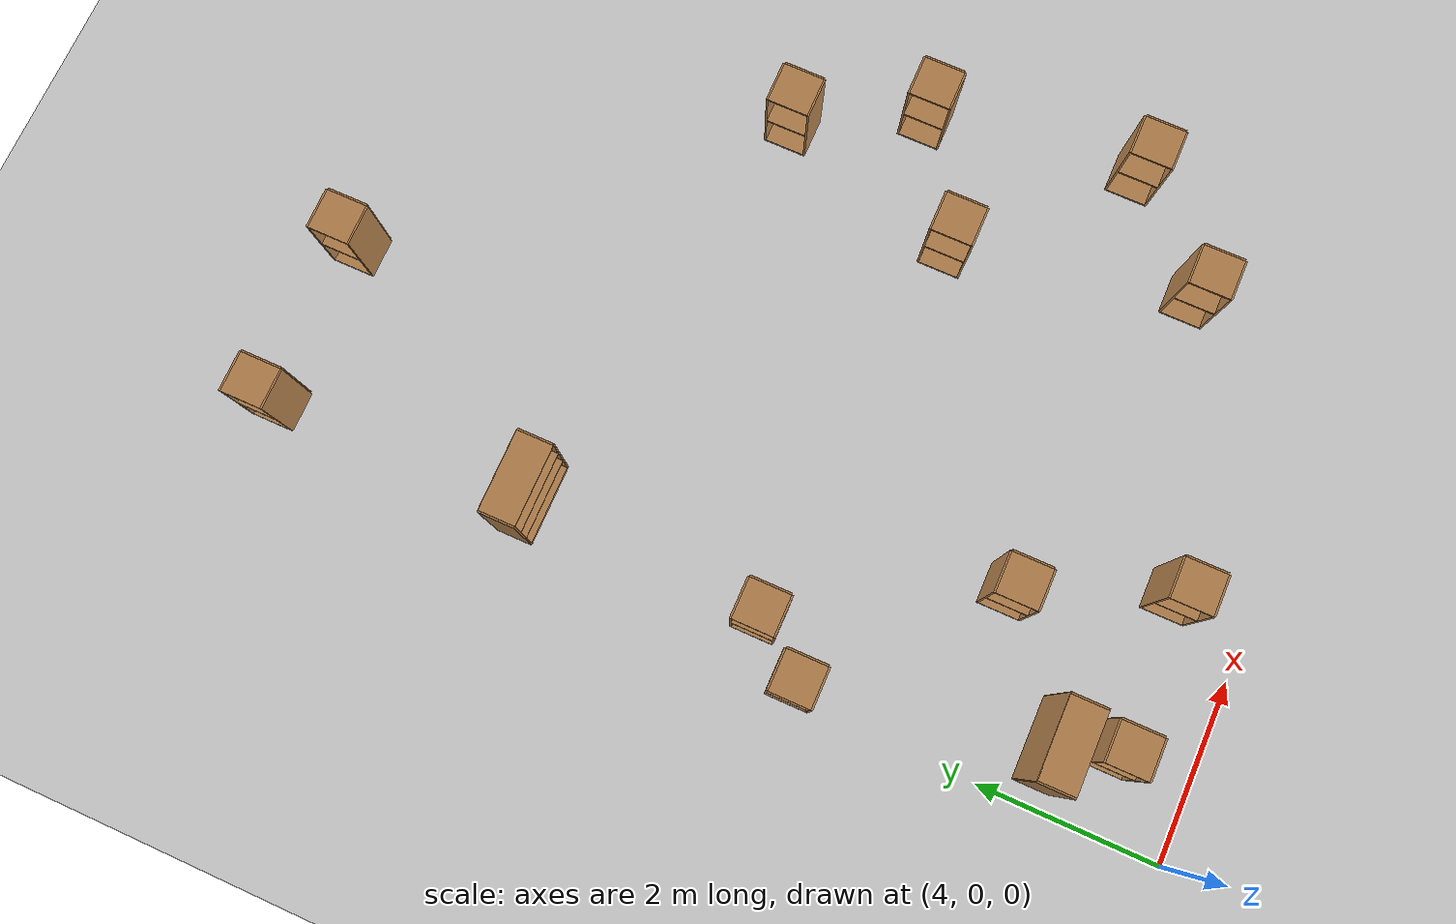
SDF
<sdf version="1.6">
 <world name="default">
  <model name="ground_plane">
   <static>1</static>
   <link name="link">
    <collision name="collision">
     <geometry><plane><normal>0 0 1</normal><size>100 100</size></plane></geometry>
     <surface><friction><ode><mu>100</mu><mu2>50</mu2></ode></friction></surface>
    </collision>
    <visual name="visual">
     <cast_shadows>0</cast_shadows>
     <geometry><plane><normal>0 0 1</normal><size>100 100</size></plane></geometry>
     <material>
      <script><uri>file://media/materials/scripts/gazebo.material</uri><name>Gazebo/Grey</name></script>
     </material>
    </visual>
   </link>
  </model>
  <model name="bookshelf_5">
   <static>1</static>
   <link name="link">
    <inertial><mass>1</mass></inertial>
    <collision name="back">
     <pose>0 0.005 0.6 0 -0 0</pose>
     <geometry><box><size>0.9 0.01 1.2</size></box></geometry>
    </collision>
    <visual name="visual1">
     <pose>0 0.005 0.6 0 -0 0</pose>
     <geometry><box><size>0.9 0.01 1.2</size></box></geometry>
     <material>
      <script><uri>file://media/materials/scripts/gazebo.material</uri><name>Gazebo/Wood</name></script>
     </material>
    </visual>
    <collision name="left_side">
     <pose>0.45 -0.195 0.6 0 -0 0</pose>
     <geometry><box><size>0.02 0.4 1.2</size></box></geometry>
    </collision>
    <visual name="visual2">
     <pose>0.45 -0.195 0.6 0 -0 0</pose>
     <geometry><box><size>0.02 0.4 1.2</size></box></geometry>
     <material>
      <script><uri>file://media/materials/scripts/gazebo.material</uri><name>Gazebo/Wood</name></script>
     </material>
    </visual>
    <collision name="right_side">
     <pose>-0.45 -0.195 0.6 0 -0 0</pose>
     <geometry><box><size>0.02 0.4 1.2</size></box></geometry>
    </collision>
    <visual name="visual3">
     <pose>-0.45 -0.195 0.6 0 -0 0</pose>
     <geometry><box><size>0.02 0.4 1.2</size></box></geometry>
     <material>
      <script><uri>file://media/materials/scripts/gazebo.material</uri><name>Gazebo/Wood</name></script>
     </material>
    </visual>
    <collision name="bottom">
     <pose>0 -0.195 0.03 0 -0 0</pose>
     <geometry><box><size>0.88 0.4 0.06</size></box></geometry>
    </collision>
    <visual name="visual4">
     <pose>0 -0.195 0.03 0 -0 0</pose>
     <geometry><box><size>0.88 0.4 0.06</size></box></geometry>
     <material>
      <script><uri>file://media/materials/scripts/gazebo.material</uri><name>Gazebo/Wood</name></script>
     </material>
    </visual>
    <collision name="top">
     <pose>0 -0.195 1.19 0 -0 0</pose>
     <geometry><box><size>0.88 0.4 0.02</size></box></geometry>
    </collision>
    <visual name="visual5">
     <pose>0 -0.195 1.19 0 -0 0</pose>
     <geometry><box><size>0.88 0.4 0.02</size></box></geometry>
     <material>
      <script><uri>file://media/materials/scripts/gazebo.material</uri><name>Gazebo/Wood</name></script>
     </material>
    </visual>
    <collision name="low_shelf">
     <pose>0 -0.195 0.43 0 -0 0</pose>
     <geometry><box><size>0.88 0.4 0.02</size></box></geometry>
    </collision>
    <visual name="visual6">
     <pose>0 -0.195 0.43 0 -0 0</pose>
     <geometry><box><size>0.88 0.4 0.02</size></box></geometry>
     <material>
      <script><uri>file://media/materials/scripts/gazebo.material</uri><name>Gazebo/Wood</name></script>
     </material>
    </visual>
    <collision name="high_shelf">
     <pose>0 -0.195 0.8 0 -0 0</pose>
     <geometry><box><size>0.88 0.4 0.02</size></box></geometry>
    </collision>
    <visual name="visual7">
     <pose>0 -0.195 0.8 0 -0 0</pose>
     <geometry><box><size>0.88 0.4 0.02</size></box></geometry>
     <material>
      <script><uri>file://media/materials/scripts/gazebo.material</uri><name>Gazebo/Wood</name></script>
     </material>
    </visual>
   </link>
   <pose>4.85892 7.59996 0 0 -0 0</pose>
  </model>
  <model name="cabinet">
   <static>1</static>
   <link name="cabinet_bottom_plate">
    <inertial>
     <pose>0 0 -1 0 -0 0</pose>
     <inertia><ixx>2.05</ixx><ixy>0</ixy><ixz>0</ixz><iyy>2.05</iyy><iyz>0</iyz><izz>2.05</izz></inertia>
     <mass>25</mass>
    </inertial>
    <collision name="cabinet_bottom_plate_geom">
     <pose>0 0 0.01 0 -0 0</pose>
     <geometry><box><size>0.45 0.45 0.02</size></box></geometry>
    </collision>
    <visual name="cabinet_bottom_plate_geom_visual">
     <pose>0 0 0.01 0 -0 0</pose>
     <geometry><box><size>0.45 0.45 0.02</size></box></geometry>
     <material>
      <script><uri>file://media/materials/scripts/gazebo.material</uri><name>Gazebo/Wood</name></script>
     </material>
    </visual>
    <collision name="cabinet_bottom_plate_geom_cabinet_back_plate">
     <pose>0.235 0 0.51 0 -0 0</pose>
     <geometry><box><size>0.02 0.45 1.02</size></box></geometry>
    </collision>
    <visual name="cabinet_bottom_plate_geom_cabinet_back_plate_visual">
     <pose>0.235 0 0.51 0 -0 0</pose>
     <geometry><box><size>0.02 0.45 1.02</size></box></geometry>
     <material>
      <script><uri>file://media/materials/scripts/gazebo.material</uri><name>Gazebo/Wood</name></script>
     </material>
    </visual>
    <collision name="cabinet_bottom_plate_geom_cabinet_left_plate">
     <pose>0 0.235 0.51 0 -0 0</pose>
     <geometry><box><size>0.45 0.02 1.02</size></box></geometry>
    </collision>
    <visual name="cabinet_bottom_plate_geom_cabinet_left_plate_visual">
     <pose>0 0.235 0.51 0 -0 0</pose>
     <geometry><box><size>0.45 0.02 1.02</size></box></geometry>
     <material>
      <script><uri>file://media/materials/scripts/gazebo.material</uri><name>Gazebo/Wood</name></script>
     </material>
    </visual>
    <collision name="cabinet_bottom_plate_geom_cabinet_middle_plate">
     <pose>0 0 0.51 0 -0 0</pose>
     <geometry><box><size>0.45 0.45 0.02</size></box></geometry>
    </collision>
    <visual name="cabinet_bottom_plate_geom_cabinet_middle_plate_visual">
     <pose>0 0 0.51 0 -0 0</pose>
     <geometry><box><size>0.45 0.45 0.02</size></box></geometry>
     <material>
      <script><uri>file://media/materials/scripts/gazebo.material</uri><name>Gazebo/Wood</name></script>
     </material>
    </visual>
    <collision name="cabinet_bottom_plate_geom_cabinet_right_plate">
     <pose>0 -0.235 0.51 0 -0 0</pose>
     <geometry><box><size>0.45 0.02 1.02</size></box></geometry>
    </collision>
    <visual name="cabinet_bottom_plate_geom_cabinet_right_plate_visual">
     <pose>0 -0.235 0.51 0 -0 0</pose>
     <geometry><box><size>0.45 0.02 1.02</size></box></geometry>
     <material>
      <script><uri>file://media/materials/scripts/gazebo.material</uri><name>Gazebo/Wood</name></script>
     </material>
    </visual>
    <collision name="cabinet_bottom_plate_geom_cabinet_top_plate">
     <pose>0 0 1.01 0 -0 0</pose>
     <geometry><box><size>0.45 0.45 0.02</size></box></geometry>
    </collision>
    <visual name="cabinet_bottom_plate_geom_cabinet_top_plate_visual">
     <pose>0 0 1.01 0 -0 0</pose>
     <geometry><box><size>0.45 0.45 0.02</size></box></geometry>
     <material>
      <script><uri>file://media/materials/scripts/gazebo.material</uri><name>Gazebo/Wood</name></script>
     </material>
    </visual>
   </link>
   <pose>4.68742 4.70051 0 0 -0 0</pose>
  </model>
  <model name="cabinet_6">
   <static>1</static>
   <link name="cabinet_bottom_plate">
    <inertial>
     <pose>0 0 -1 0 -0 0</pose>
     <inertia><ixx>2.05</ixx><ixy>0</ixy><ixz>0</ixz><iyy>2.05</iyy><iyz>0</iyz><izz>2.05</izz></inertia>
     <mass>25</mass>
    </inertial>
    <collision name="cabinet_bottom_plate_geom">
     <pose>0 0 0.01 0 -0 0</pose>
     <geometry><box><size>0.45 0.45 0.02</size></box></geometry>
    </collision>
    <visual name="cabinet_bottom_plate_geom_visual">
     <pose>0 0 0.01 0 -0 0</pose>
     <geometry><box><size>0.45 0.45 0.02</size></box></geometry>
     <material>
      <script><uri>file://media/materials/scripts/gazebo.material</uri><name>Gazebo/Wood</name></script>
     </material>
    </visual>
    <collision name="cabinet_bottom_plate_geom_cabinet_back_plate">
     <pose>0.235 0 0.51 0 -0 0</pose>
     <geometry><box><size>0.02 0.45 1.02</size></box></geometry>
    </collision>
    <visual name="cabinet_bottom_plate_geom_cabinet_back_plate_visual">
     <pose>0.235 0 0.51 0 -0 0</pose>
     <geometry><box><size>0.02 0.45 1.02</size></box></geometry>
     <material>
      <script><uri>file://media/materials/scripts/gazebo.material</uri><name>Gazebo/Wood</name></script>
     </material>
    </visual>
    <collision name="cabinet_bottom_plate_geom_cabinet_left_plate">
     <pose>0 0.235 0.51 0 -0 0</pose>
     <geometry><box><size>0.45 0.02 1.02</size></box></geometry>
    </collision>
    <visual name="cabinet_bottom_plate_geom_cabinet_left_plate_visual">
     <pose>0 0.235 0.51 0 -0 0</pose>
     <geometry><box><size>0.45 0.02 1.02</size></box></geometry>
     <material>
      <script><uri>file://media/materials/scripts/gazebo.material</uri><name>Gazebo/Wood</name></script>
     </material>
    </visual>
    <collision name="cabinet_bottom_plate_geom_cabinet_middle_plate">
     <pose>0 0 0.51 0 -0 0</pose>
     <geometry><box><size>0.45 0.45 0.02</size></box></geometry>
    </collision>
    <visual name="cabinet_bottom_plate_geom_cabinet_middle_plate_visual">
     <pose>0 0 0.51 0 -0 0</pose>
     <geometry><box><size>0.45 0.45 0.02</size></box></geometry>
     <material>
      <script><uri>file://media/materials/scripts/gazebo.material</uri><name>Gazebo/Wood</name></script>
     </material>
    </visual>
    <collision name="cabinet_bottom_plate_geom_cabinet_right_plate">
     <pose>0 -0.235 0.51 0 -0 0</pose>
     <geometry><box><size>0.45 0.02 1.02</size></box></geometry>
    </collision>
    <visual name="cabinet_bottom_plate_geom_cabinet_right_plate_visual">
     <pose>0 -0.235 0.51 0 -0 0</pose>
     <geometry><box><size>0.45 0.02 1.02</size></box></geometry>
     <material>
      <script><uri>file://media/materials/scripts/gazebo.material</uri><name>Gazebo/Wood</name></script>
     </material>
    </visual>
    <collision name="cabinet_bottom_plate_geom_cabinet_top_plate">
     <pose>0 0 1.01 0 -0 0</pose>
     <geometry><box><size>0.45 0.45 0.02</size></box></geometry>
    </collision>
    <visual name="cabinet_bottom_plate_geom_cabinet_top_plate_visual">
     <pose>0 0 1.01 0 -0 0</pose>
     <geometry><box><size>0.45 0.45 0.02</size></box></geometry>
     <material>
      <script><uri>file://media/materials/scripts/gazebo.material</uri><name>Gazebo/Wood</name></script>
     </material>
    </visual>
   </link>
   <pose>4.19446 4.09646 0 0 -0 0</pose>
  </model>
  <model name="bookshelf_18">
   <static>1</static>
   <link name="link">
    <inertial><mass>1</mass></inertial>
    <collision name="back">
     <pose>0 0.005 0.6 0 -0 0</pose>
     <geometry><box><size>0.9 0.01 1.2</size></box></geometry>
    </collision>
    <visual name="visual1">
     <pose>0 0.005 0.6 0 -0 0</pose>
     <geometry><box><size>0.9 0.01 1.2</size></box></geometry>
     <material>
      <script><uri>file://media/materials/scripts/gazebo.material</uri><name>Gazebo/Wood</name></script>
     </material>
    </visual>
    <collision name="left_side">
     <pose>0.45 -0.195 0.6 0 -0 0</pose>
     <geometry><box><size>0.02 0.4 1.2</size></box></geometry>
    </collision>
    <visual name="visual2">
     <pose>0.45 -0.195 0.6 0 -0 0</pose>
     <geometry><box><size>0.02 0.4 1.2</size></box></geometry>
     <material>
      <script><uri>file://media/materials/scripts/gazebo.material</uri><name>Gazebo/Wood</name></script>
     </material>
    </visual>
    <collision name="right_side">
     <pose>-0.45 -0.195 0.6 0 -0 0</pose>
     <geometry><box><size>0.02 0.4 1.2</size></box></geometry>
    </collision>
    <visual name="visual3">
     <pose>-0.45 -0.195 0.6 0 -0 0</pose>
     <geometry><box><size>0.02 0.4 1.2</size></box></geometry>
     <material>
      <script><uri>file://media/materials/scripts/gazebo.material</uri><name>Gazebo/Wood</name></script>
     </material>
    </visual>
    <collision name="bottom">
     <pose>0 -0.195 0.03 0 -0 0</pose>
     <geometry><box><size>0.88 0.4 0.06</size></box></geometry>
    </collision>
    <visual name="visual4">
     <pose>0 -0.195 0.03 0 -0 0</pose>
     <geometry><box><size>0.88 0.4 0.06</size></box></geometry>
     <material>
      <script><uri>file://media/materials/scripts/gazebo.material</uri><name>Gazebo/Wood</name></script>
     </material>
    </visual>
    <collision name="top">
     <pose>0 -0.195 1.19 0 -0 0</pose>
     <geometry><box><size>0.88 0.4 0.02</size></box></geometry>
    </collision>
    <visual name="visual5">
     <pose>0 -0.195 1.19 0 -0 0</pose>
     <geometry><box><size>0.88 0.4 0.02</size></box></geometry>
     <material>
      <script><uri>file://media/materials/scripts/gazebo.material</uri><name>Gazebo/Wood</name></script>
     </material>
    </visual>
    <collision name="low_shelf">
     <pose>0 -0.195 0.43 0 -0 0</pose>
     <geometry><box><size>0.88 0.4 0.02</size></box></geometry>
    </collision>
    <visual name="visual6">
     <pose>0 -0.195 0.43 0 -0 0</pose>
     <geometry><box><size>0.88 0.4 0.02</size></box></geometry>
     <material>
      <script><uri>file://media/materials/scripts/gazebo.material</uri><name>Gazebo/Wood</name></script>
     </material>
    </visual>
    <collision name="high_shelf">
     <pose>0 -0.195 0.8 0 -0 0</pose>
     <geometry><box><size>0.88 0.4 0.02</size></box></geometry>
    </collision>
    <visual name="visual7">
     <pose>0 -0.195 0.8 0 -0 0</pose>
     <geometry><box><size>0.88 0.4 0.02</size></box></geometry>
     <material>
      <script><uri>file://media/materials/scripts/gazebo.material</uri><name>Gazebo/Wood</name></script>
     </material>
    </visual>
   </link>
   <pose>4.66134 1.67352 0 0 -0 0</pose>
  </model>
  <model name="cabinet_12">
   <static>1</static>
   <link name="cabinet_bottom_plate">
    <inertial>
     <pose>0 0 -1 0 -0 0</pose>
     <inertia><ixx>2.05</ixx><ixy>0</ixy><ixz>0</ixz><iyy>2.05</iyy><iyz>0</iyz><izz>2.05</izz></inertia>
     <mass>25</mass>
    </inertial>
    <collision name="cabinet_bottom_plate_geom">
     <pose>0 0 0.01 0 -0 0</pose>
     <geometry><box><size>0.45 0.45 0.02</size></box></geometry>
    </collision>
    <visual name="cabinet_bottom_plate_geom_visual">
     <pose>0 0 0.01 0 -0 0</pose>
     <geometry><box><size>0.45 0.45 0.02</size></box></geometry>
     <material>
      <script><uri>file://media/materials/scripts/gazebo.material</uri><name>Gazebo/Wood</name></script>
     </material>
    </visual>
    <collision name="cabinet_bottom_plate_geom_cabinet_back_plate">
     <pose>0.235 0 0.51 0 -0 0</pose>
     <geometry><box><size>0.02 0.45 1.02</size></box></geometry>
    </collision>
    <visual name="cabinet_bottom_plate_geom_cabinet_back_plate_visual">
     <pose>0.235 0 0.51 0 -0 0</pose>
     <geometry><box><size>0.02 0.45 1.02</size></box></geometry>
     <material>
      <script><uri>file://media/materials/scripts/gazebo.material</uri><name>Gazebo/Wood</name></script>
     </material>
    </visual>
    <collision name="cabinet_bottom_plate_geom_cabinet_left_plate">
     <pose>0 0.235 0.51 0 -0 0</pose>
     <geometry><box><size>0.45 0.02 1.02</size></box></geometry>
    </collision>
    <visual name="cabinet_bottom_plate_geom_cabinet_left_plate_visual">
     <pose>0 0.235 0.51 0 -0 0</pose>
     <geometry><box><size>0.45 0.02 1.02</size></box></geometry>
     <material>
      <script><uri>file://media/materials/scripts/gazebo.material</uri><name>Gazebo/Wood</name></script>
     </material>
    </visual>
    <collision name="cabinet_bottom_plate_geom_cabinet_middle_plate">
     <pose>0 0 0.51 0 -0 0</pose>
     <geometry><box><size>0.45 0.45 0.02</size></box></geometry>
    </collision>
    <visual name="cabinet_bottom_plate_geom_cabinet_middle_plate_visual">
     <pose>0 0 0.51 0 -0 0</pose>
     <geometry><box><size>0.45 0.45 0.02</size></box></geometry>
     <material>
      <script><uri>file://media/materials/scripts/gazebo.material</uri><name>Gazebo/Wood</name></script>
     </material>
    </visual>
    <collision name="cabinet_bottom_plate_geom_cabinet_right_plate">
     <pose>0 -0.235 0.51 0 -0 0</pose>
     <geometry><box><size>0.45 0.02 1.02</size></box></geometry>
    </collision>
    <visual name="cabinet_bottom_plate_geom_cabinet_right_plate_visual">
     <pose>0 -0.235 0.51 0 -0 0</pose>
     <geometry><box><size>0.45 0.02 1.02</size></box></geometry>
     <material>
      <script><uri>file://media/materials/scripts/gazebo.material</uri><name>Gazebo/Wood</name></script>
     </material>
    </visual>
    <collision name="cabinet_bottom_plate_geom_cabinet_top_plate">
     <pose>0 0 1.01 0 -0 0</pose>
     <geometry><box><size>0.45 0.45 0.02</size></box></geometry>
    </collision>
    <visual name="cabinet_bottom_plate_geom_cabinet_top_plate_visual">
     <pose>0 0 1.01 0 -0 0</pose>
     <geometry><box><size>0.45 0.45 0.02</size></box></geometry>
     <material>
      <script><uri>file://media/materials/scripts/gazebo.material</uri><name>Gazebo/Wood</name></script>
     </material>
    </visual>
   </link>
   <pose>5.95703 2.43845 0 0 -0 0</pose>
  </model>
  <model name="cabinet_16">
   <static>1</static>
   <link name="cabinet_bottom_plate">
    <inertial>
     <pose>0 0 -1 0 -0 0</pose>
     <inertia><ixx>2.05</ixx><ixy>0</ixy><ixz>0</ixz><iyy>2.05</iyy><iyz>0</iyz><izz>2.05</izz></inertia>
     <mass>25</mass>
    </inertial>
    <collision name="cabinet_bottom_plate_geom">
     <pose>0 0 0.01 0 -0 0</pose>
     <geometry><box><size>0.45 0.45 0.02</size></box></geometry>
    </collision>
    <visual name="cabinet_bottom_plate_geom_visual">
     <pose>0 0 0.01 0 -0 0</pose>
     <geometry><box><size>0.45 0.45 0.02</size></box></geometry>
     <material>
      <script><uri>file://media/materials/scripts/gazebo.material</uri><name>Gazebo/Wood</name></script>
     </material>
    </visual>
    <collision name="cabinet_bottom_plate_geom_cabinet_back_plate">
     <pose>0.235 0 0.51 0 -0 0</pose>
     <geometry><box><size>0.02 0.45 1.02</size></box></geometry>
    </collision>
    <visual name="cabinet_bottom_plate_geom_cabinet_back_plate_visual">
     <pose>0.235 0 0.51 0 -0 0</pose>
     <geometry><box><size>0.02 0.45 1.02</size></box></geometry>
     <material>
      <script><uri>file://media/materials/scripts/gazebo.material</uri><name>Gazebo/Wood</name></script>
     </material>
    </visual>
    <collision name="cabinet_bottom_plate_geom_cabinet_left_plate">
     <pose>0 0.235 0.51 0 -0 0</pose>
     <geometry><box><size>0.45 0.02 1.02</size></box></geometry>
    </collision>
    <visual name="cabinet_bottom_plate_geom_cabinet_left_plate_visual">
     <pose>0 0.235 0.51 0 -0 0</pose>
     <geometry><box><size>0.45 0.02 1.02</size></box></geometry>
     <material>
      <script><uri>file://media/materials/scripts/gazebo.material</uri><name>Gazebo/Wood</name></script>
     </material>
    </visual>
    <collision name="cabinet_bottom_plate_geom_cabinet_middle_plate">
     <pose>0 0 0.51 0 -0 0</pose>
     <geometry><box><size>0.45 0.45 0.02</size></box></geometry>
    </collision>
    <visual name="cabinet_bottom_plate_geom_cabinet_middle_plate_visual">
     <pose>0 0 0.51 0 -0 0</pose>
     <geometry><box><size>0.45 0.45 0.02</size></box></geometry>
     <material>
      <script><uri>file://media/materials/scripts/gazebo.material</uri><name>Gazebo/Wood</name></script>
     </material>
    </visual>
    <collision name="cabinet_bottom_plate_geom_cabinet_right_plate">
     <pose>0 -0.235 0.51 0 -0 0</pose>
     <geometry><box><size>0.45 0.02 1.02</size></box></geometry>
    </collision>
    <visual name="cabinet_bottom_plate_geom_cabinet_right_plate_visual">
     <pose>0 -0.235 0.51 0 -0 0</pose>
     <geometry><box><size>0.45 0.02 1.02</size></box></geometry>
     <material>
      <script><uri>file://media/materials/scripts/gazebo.material</uri><name>Gazebo/Wood</name></script>
     </material>
    </visual>
    <collision name="cabinet_bottom_plate_geom_cabinet_top_plate">
     <pose>0 0 1.01 0 -0 0</pose>
     <geometry><box><size>0.45 0.45 0.02</size></box></geometry>
    </collision>
    <visual name="cabinet_bottom_plate_geom_cabinet_top_plate_visual">
     <pose>0 0 1.01 0 -0 0</pose>
     <geometry><box><size>0.45 0.45 0.02</size></box></geometry>
     <material>
      <script><uri>file://media/materials/scripts/gazebo.material</uri><name>Gazebo/Wood</name></script>
     </material>
    </visual>
   </link>
   <pose>4.87024 0.881065 0 0 -0 0</pose>
  </model>
  <model name="cabinet_17">
   <static>1</static>
   <link name="cabinet_bottom_plate">
    <inertial>
     <pose>0 0 -1 0 -0 0</pose>
     <inertia><ixx>2.05</ixx><ixy>0</ixy><ixz>0</ixz><iyy>2.05</iyy><iyz>0</iyz><izz>2.05</izz></inertia>
     <mass>25</mass>
    </inertial>
    <collision name="cabinet_bottom_plate_geom">
     <pose>0 0 0.01 0 -0 0</pose>
     <geometry><box><size>0.45 0.45 0.02</size></box></geometry>
    </collision>
    <visual name="cabinet_bottom_plate_geom_visual">
     <pose>0 0 0.01 0 -0 0</pose>
     <geometry><box><size>0.45 0.45 0.02</size></box></geometry>
     <material>
      <script><uri>file://media/materials/scripts/gazebo.material</uri><name>Gazebo/Wood</name></script>
     </material>
    </visual>
    <collision name="cabinet_bottom_plate_geom_cabinet_back_plate">
     <pose>0.235 0 0.51 0 -0 0</pose>
     <geometry><box><size>0.02 0.45 1.02</size></box></geometry>
    </collision>
    <visual name="cabinet_bottom_plate_geom_cabinet_back_plate_visual">
     <pose>0.235 0 0.51 0 -0 0</pose>
     <geometry><box><size>0.02 0.45 1.02</size></box></geometry>
     <material>
      <script><uri>file://media/materials/scripts/gazebo.material</uri><name>Gazebo/Wood</name></script>
     </material>
    </visual>
    <collision name="cabinet_bottom_plate_geom_cabinet_left_plate">
     <pose>0 0.235 0.51 0 -0 0</pose>
     <geometry><box><size>0.45 0.02 1.02</size></box></geometry>
    </collision>
    <visual name="cabinet_bottom_plate_geom_cabinet_left_plate_visual">
     <pose>0 0.235 0.51 0 -0 0</pose>
     <geometry><box><size>0.45 0.02 1.02</size></box></geometry>
     <material>
      <script><uri>file://media/materials/scripts/gazebo.material</uri><name>Gazebo/Wood</name></script>
     </material>
    </visual>
    <collision name="cabinet_bottom_plate_geom_cabinet_middle_plate">
     <pose>0 0 0.51 0 -0 0</pose>
     <geometry><box><size>0.45 0.45 0.02</size></box></geometry>
    </collision>
    <visual name="cabinet_bottom_plate_geom_cabinet_middle_plate_visual">
     <pose>0 0 0.51 0 -0 0</pose>
     <geometry><box><size>0.45 0.45 0.02</size></box></geometry>
     <material>
      <script><uri>file://media/materials/scripts/gazebo.material</uri><name>Gazebo/Wood</name></script>
     </material>
    </visual>
    <collision name="cabinet_bottom_plate_geom_cabinet_right_plate">
     <pose>0 -0.235 0.51 0 -0 0</pose>
     <geometry><box><size>0.45 0.02 1.02</size></box></geometry>
    </collision>
    <visual name="cabinet_bottom_plate_geom_cabinet_right_plate_visual">
     <pose>0 -0.235 0.51 0 -0 0</pose>
     <geometry><box><size>0.45 0.02 1.02</size></box></geometry>
     <material>
      <script><uri>file://media/materials/scripts/gazebo.material</uri><name>Gazebo/Wood</name></script>
     </material>
    </visual>
    <collision name="cabinet_bottom_plate_geom_cabinet_top_plate">
     <pose>0 0 1.01 0 -0 0</pose>
     <geometry><box><size>0.45 0.45 0.02</size></box></geometry>
    </collision>
    <visual name="cabinet_bottom_plate_geom_cabinet_top_plate_visual">
     <pose>0 0 1.01 0 -0 0</pose>
     <geometry><box><size>0.45 0.45 0.02</size></box></geometry>
     <material>
      <script><uri>file://media/materials/scripts/gazebo.material</uri><name>Gazebo/Wood</name></script>
     </material>
    </visual>
   </link>
   <pose>6.59463 0.855566 0 0 -0 0</pose>
  </model>
  <model name="cabinet_37">
   <static>1</static>
   <link name="cabinet_bottom_plate">
    <inertial>
     <pose>0 0 -1 0 -0 0</pose>
     <inertia><ixx>2.05</ixx><ixy>0</ixy><ixz>0</ixz><iyy>2.05</iyy><iyz>0</iyz><izz>2.05</izz></inertia>
     <mass>25</mass>
    </inertial>
    <collision name="cabinet_bottom_plate_geom">
     <pose>0 0 0.01 0 -0 0</pose>
     <geometry><box><size>0.45 0.45 0.02</size></box></geometry>
    </collision>
    <visual name="cabinet_bottom_plate_geom_visual">
     <pose>0 0 0.01 0 -0 0</pose>
     <geometry><box><size>0.45 0.45 0.02</size></box></geometry>
     <material>
      <script><uri>file://media/materials/scripts/gazebo.material</uri><name>Gazebo/Wood</name></script>
     </material>
    </visual>
    <collision name="cabinet_bottom_plate_geom_cabinet_back_plate">
     <pose>0.235 0 0.51 0 -0 0</pose>
     <geometry><box><size>0.02 0.45 1.02</size></box></geometry>
    </collision>
    <visual name="cabinet_bottom_plate_geom_cabinet_back_plate_visual">
     <pose>0.235 0 0.51 0 -0 0</pose>
     <geometry><box><size>0.02 0.45 1.02</size></box></geometry>
     <material>
      <script><uri>file://media/materials/scripts/gazebo.material</uri><name>Gazebo/Wood</name></script>
     </material>
    </visual>
    <collision name="cabinet_bottom_plate_geom_cabinet_left_plate">
     <pose>0 0.235 0.51 0 -0 0</pose>
     <geometry><box><size>0.45 0.02 1.02</size></box></geometry>
    </collision>
    <visual name="cabinet_bottom_plate_geom_cabinet_left_plate_visual">
     <pose>0 0.235 0.51 0 -0 0</pose>
     <geometry><box><size>0.45 0.02 1.02</size></box></geometry>
     <material>
      <script><uri>file://media/materials/scripts/gazebo.material</uri><name>Gazebo/Wood</name></script>
     </material>
    </visual>
    <collision name="cabinet_bottom_plate_geom_cabinet_middle_plate">
     <pose>0 0 0.51 0 -0 0</pose>
     <geometry><box><size>0.45 0.45 0.02</size></box></geometry>
    </collision>
    <visual name="cabinet_bottom_plate_geom_cabinet_middle_plate_visual">
     <pose>0 0 0.51 0 -0 0</pose>
     <geometry><box><size>0.45 0.45 0.02</size></box></geometry>
     <material>
      <script><uri>file://media/materials/scripts/gazebo.material</uri><name>Gazebo/Wood</name></script>
     </material>
    </visual>
    <collision name="cabinet_bottom_plate_geom_cabinet_right_plate">
     <pose>0 -0.235 0.51 0 -0 0</pose>
     <geometry><box><size>0.45 0.02 1.02</size></box></geometry>
    </collision>
    <visual name="cabinet_bottom_plate_geom_cabinet_right_plate_visual">
     <pose>0 -0.235 0.51 0 -0 0</pose>
     <geometry><box><size>0.45 0.02 1.02</size></box></geometry>
     <material>
      <script><uri>file://media/materials/scripts/gazebo.material</uri><name>Gazebo/Wood</name></script>
     </material>
    </visual>
    <collision name="cabinet_bottom_plate_geom_cabinet_top_plate">
     <pose>0 0 1.01 0 -0 0</pose>
     <geometry><box><size>0.45 0.45 0.02</size></box></geometry>
    </collision>
    <visual name="cabinet_bottom_plate_geom_cabinet_top_plate_visual">
     <pose>0 0 1.01 0 -0 0</pose>
     <geometry><box><size>0.45 0.45 0.02</size></box></geometry>
     <material>
      <script><uri>file://media/materials/scripts/gazebo.material</uri><name>Gazebo/Wood</name></script>
     </material>
    </visual>
   </link>
   <pose>9.81889 6.53932 0 0 -0 0</pose>
  </model>
  <model name="cabinet_38">
   <static>1</static>
   <link name="cabinet_bottom_plate">
    <inertial>
     <pose>0 0 -1 0 -0 0</pose>
     <inertia><ixx>2.05</ixx><ixy>0</ixy><ixz>0</ixz><iyy>2.05</iyy><iyz>0</iyz><izz>2.05</izz></inertia>
     <mass>25</mass>
    </inertial>
    <collision name="cabinet_bottom_plate_geom">
     <pose>0 0 0.01 0 -0 0</pose>
     <geometry><box><size>0.45 0.45 0.02</size></box></geometry>
    </collision>
    <visual name="cabinet_bottom_plate_geom_visual">
     <pose>0 0 0.01 0 -0 0</pose>
     <geometry><box><size>0.45 0.45 0.02</size></box></geometry>
     <material>
      <script><uri>file://media/materials/scripts/gazebo.material</uri><name>Gazebo/Wood</name></script>
     </material>
    </visual>
    <collision name="cabinet_bottom_plate_geom_cabinet_back_plate">
     <pose>0.235 0 0.51 0 -0 0</pose>
     <geometry><box><size>0.02 0.45 1.02</size></box></geometry>
    </collision>
    <visual name="cabinet_bottom_plate_geom_cabinet_back_plate_visual">
     <pose>0.235 0 0.51 0 -0 0</pose>
     <geometry><box><size>0.02 0.45 1.02</size></box></geometry>
     <material>
      <script><uri>file://media/materials/scripts/gazebo.material</uri><name>Gazebo/Wood</name></script>
     </material>
    </visual>
    <collision name="cabinet_bottom_plate_geom_cabinet_left_plate">
     <pose>0 0.235 0.51 0 -0 0</pose>
     <geometry><box><size>0.45 0.02 1.02</size></box></geometry>
    </collision>
    <visual name="cabinet_bottom_plate_geom_cabinet_left_plate_visual">
     <pose>0 0.235 0.51 0 -0 0</pose>
     <geometry><box><size>0.45 0.02 1.02</size></box></geometry>
     <material>
      <script><uri>file://media/materials/scripts/gazebo.material</uri><name>Gazebo/Wood</name></script>
     </material>
    </visual>
    <collision name="cabinet_bottom_plate_geom_cabinet_middle_plate">
     <pose>0 0 0.51 0 -0 0</pose>
     <geometry><box><size>0.45 0.45 0.02</size></box></geometry>
    </collision>
    <visual name="cabinet_bottom_plate_geom_cabinet_middle_plate_visual">
     <pose>0 0 0.51 0 -0 0</pose>
     <geometry><box><size>0.45 0.45 0.02</size></box></geometry>
     <material>
      <script><uri>file://media/materials/scripts/gazebo.material</uri><name>Gazebo/Wood</name></script>
     </material>
    </visual>
    <collision name="cabinet_bottom_plate_geom_cabinet_right_plate">
     <pose>0 -0.235 0.51 0 -0 0</pose>
     <geometry><box><size>0.45 0.02 1.02</size></box></geometry>
    </collision>
    <visual name="cabinet_bottom_plate_geom_cabinet_right_plate_visual">
     <pose>0 -0.235 0.51 0 -0 0</pose>
     <geometry><box><size>0.45 0.02 1.02</size></box></geometry>
     <material>
      <script><uri>file://media/materials/scripts/gazebo.material</uri><name>Gazebo/Wood</name></script>
     </material>
    </visual>
    <collision name="cabinet_bottom_plate_geom_cabinet_top_plate">
     <pose>0 0 1.01 0 -0 0</pose>
     <geometry><box><size>0.45 0.45 0.02</size></box></geometry>
    </collision>
    <visual name="cabinet_bottom_plate_geom_cabinet_top_plate_visual">
     <pose>0 0 1.01 0 -0 0</pose>
     <geometry><box><size>0.45 0.45 0.02</size></box></geometry>
     <material>
      <script><uri>file://media/materials/scripts/gazebo.material</uri><name>Gazebo/Wood</name></script>
     </material>
    </visual>
   </link>
   <pose>10.4878 5.20342 0 0 -0 0</pose>
  </model>
  <model name="cabinet_39">
   <static>1</static>
   <link name="cabinet_bottom_plate">
    <inertial>
     <pose>0 0 -1 0 -0 0</pose>
     <inertia><ixx>2.05</ixx><ixy>0</ixy><ixz>0</ixz><iyy>2.05</iyy><iyz>0</iyz><izz>2.05</izz></inertia>
     <mass>25</mass>
    </inertial>
    <collision name="cabinet_bottom_plate_geom">
     <pose>0 0 0.01 0 -0 0</pose>
     <geometry><box><size>0.45 0.45 0.02</size></box></geometry>
    </collision>
    <visual name="cabinet_bottom_plate_geom_visual">
     <pose>0 0 0.01 0 -0 0</pose>
     <geometry><box><size>0.45 0.45 0.02</size></box></geometry>
     <material>
      <script><uri>file://media/materials/scripts/gazebo.material</uri><name>Gazebo/Wood</name></script>
     </material>
    </visual>
    <collision name="cabinet_bottom_plate_geom_cabinet_back_plate">
     <pose>0.235 0 0.51 0 -0 0</pose>
     <geometry><box><size>0.02 0.45 1.02</size></box></geometry>
    </collision>
    <visual name="cabinet_bottom_plate_geom_cabinet_back_plate_visual">
     <pose>0.235 0 0.51 0 -0 0</pose>
     <geometry><box><size>0.02 0.45 1.02</size></box></geometry>
     <material>
      <script><uri>file://media/materials/scripts/gazebo.material</uri><name>Gazebo/Wood</name></script>
     </material>
    </visual>
    <collision name="cabinet_bottom_plate_geom_cabinet_left_plate">
     <pose>0 0.235 0.51 0 -0 0</pose>
     <geometry><box><size>0.45 0.02 1.02</size></box></geometry>
    </collision>
    <visual name="cabinet_bottom_plate_geom_cabinet_left_plate_visual">
     <pose>0 0.235 0.51 0 -0 0</pose>
     <geometry><box><size>0.45 0.02 1.02</size></box></geometry>
     <material>
      <script><uri>file://media/materials/scripts/gazebo.material</uri><name>Gazebo/Wood</name></script>
     </material>
    </visual>
    <collision name="cabinet_bottom_plate_geom_cabinet_middle_plate">
     <pose>0 0 0.51 0 -0 0</pose>
     <geometry><box><size>0.45 0.45 0.02</size></box></geometry>
    </collision>
    <visual name="cabinet_bottom_plate_geom_cabinet_middle_plate_visual">
     <pose>0 0 0.51 0 -0 0</pose>
     <geometry><box><size>0.45 0.45 0.02</size></box></geometry>
     <material>
      <script><uri>file://media/materials/scripts/gazebo.material</uri><name>Gazebo/Wood</name></script>
     </material>
    </visual>
    <collision name="cabinet_bottom_plate_geom_cabinet_right_plate">
     <pose>0 -0.235 0.51 0 -0 0</pose>
     <geometry><box><size>0.45 0.02 1.02</size></box></geometry>
    </collision>
    <visual name="cabinet_bottom_plate_geom_cabinet_right_plate_visual">
     <pose>0 -0.235 0.51 0 -0 0</pose>
     <geometry><box><size>0.45 0.02 1.02</size></box></geometry>
     <material>
      <script><uri>file://media/materials/scripts/gazebo.material</uri><name>Gazebo/Wood</name></script>
     </material>
    </visual>
    <collision name="cabinet_bottom_plate_geom_cabinet_top_plate">
     <pose>0 0 1.01 0 -0 0</pose>
     <geometry><box><size>0.45 0.45 0.02</size></box></geometry>
    </collision>
    <visual name="cabinet_bottom_plate_geom_cabinet_top_plate_visual">
     <pose>0 0 1.01 0 -0 0</pose>
     <geometry><box><size>0.45 0.45 0.02</size></box></geometry>
     <material>
      <script><uri>file://media/materials/scripts/gazebo.material</uri><name>Gazebo/Wood</name></script>
     </material>
    </visual>
   </link>
   <pose>9.17675 4.4264 0 0 -0 0</pose>
  </model>
  <model name="cabinet_40">
   <static>1</static>
   <link name="cabinet_bottom_plate">
    <inertial>
     <pose>0 0 -1 0 -0 0</pose>
     <inertia><ixx>2.05</ixx><ixy>0</ixy><ixz>0</ixz><iyy>2.05</iyy><iyz>0</iyz><izz>2.05</izz></inertia>
     <mass>25</mass>
    </inertial>
    <collision name="cabinet_bottom_plate_geom">
     <pose>0 0 0.01 0 -0 0</pose>
     <geometry><box><size>0.45 0.45 0.02</size></box></geometry>
    </collision>
    <visual name="cabinet_bottom_plate_geom_visual">
     <pose>0 0 0.01 0 -0 0</pose>
     <geometry><box><size>0.45 0.45 0.02</size></box></geometry>
     <material>
      <script><uri>file://media/materials/scripts/gazebo.material</uri><name>Gazebo/Wood</name></script>
     </material>
    </visual>
    <collision name="cabinet_bottom_plate_geom_cabinet_back_plate">
     <pose>0.235 0 0.51 0 -0 0</pose>
     <geometry><box><size>0.02 0.45 1.02</size></box></geometry>
    </collision>
    <visual name="cabinet_bottom_plate_geom_cabinet_back_plate_visual">
     <pose>0.235 0 0.51 0 -0 0</pose>
     <geometry><box><size>0.02 0.45 1.02</size></box></geometry>
     <material>
      <script><uri>file://media/materials/scripts/gazebo.material</uri><name>Gazebo/Wood</name></script>
     </material>
    </visual>
    <collision name="cabinet_bottom_plate_geom_cabinet_left_plate">
     <pose>0 0.235 0.51 0 -0 0</pose>
     <geometry><box><size>0.45 0.02 1.02</size></box></geometry>
    </collision>
    <visual name="cabinet_bottom_plate_geom_cabinet_left_plate_visual">
     <pose>0 0.235 0.51 0 -0 0</pose>
     <geometry><box><size>0.45 0.02 1.02</size></box></geometry>
     <material>
      <script><uri>file://media/materials/scripts/gazebo.material</uri><name>Gazebo/Wood</name></script>
     </material>
    </visual>
    <collision name="cabinet_bottom_plate_geom_cabinet_middle_plate">
     <pose>0 0 0.51 0 -0 0</pose>
     <geometry><box><size>0.45 0.45 0.02</size></box></geometry>
    </collision>
    <visual name="cabinet_bottom_plate_geom_cabinet_middle_plate_visual">
     <pose>0 0 0.51 0 -0 0</pose>
     <geometry><box><size>0.45 0.45 0.02</size></box></geometry>
     <material>
      <script><uri>file://media/materials/scripts/gazebo.material</uri><name>Gazebo/Wood</name></script>
     </material>
    </visual>
    <collision name="cabinet_bottom_plate_geom_cabinet_right_plate">
     <pose>0 -0.235 0.51 0 -0 0</pose>
     <geometry><box><size>0.45 0.02 1.02</size></box></geometry>
    </collision>
    <visual name="cabinet_bottom_plate_geom_cabinet_right_plate_visual">
     <pose>0 -0.235 0.51 0 -0 0</pose>
     <geometry><box><size>0.45 0.02 1.02</size></box></geometry>
     <material>
      <script><uri>file://media/materials/scripts/gazebo.material</uri><name>Gazebo/Wood</name></script>
     </material>
    </visual>
    <collision name="cabinet_bottom_plate_geom_cabinet_top_plate">
     <pose>0 0 1.01 0 -0 0</pose>
     <geometry><box><size>0.45 0.45 0.02</size></box></geometry>
    </collision>
    <visual name="cabinet_bottom_plate_geom_cabinet_top_plate_visual">
     <pose>0 0 1.01 0 -0 0</pose>
     <geometry><box><size>0.45 0.45 0.02</size></box></geometry>
     <material>
      <script><uri>file://media/materials/scripts/gazebo.material</uri><name>Gazebo/Wood</name></script>
     </material>
    </visual>
   </link>
   <pose>10.7992 2.82959 0 0 -0 0</pose>
  </model>
  <model name="cabinet_41">
   <static>1</static>
   <link name="cabinet_bottom_plate">
    <inertial>
     <pose>0 0 -1 0 -0 0</pose>
     <inertia><ixx>2.05</ixx><ixy>0</ixy><ixz>0</ixz><iyy>2.05</iyy><iyz>0</iyz><izz>2.05</izz></inertia>
     <mass>25</mass>
    </inertial>
    <collision name="cabinet_bottom_plate_geom">
     <pose>0 0 0.01 0 -0 0</pose>
     <geometry><box><size>0.45 0.45 0.02</size></box></geometry>
    </collision>
    <visual name="cabinet_bottom_plate_geom_visual">
     <pose>0 0 0.01 0 -0 0</pose>
     <geometry><box><size>0.45 0.45 0.02</size></box></geometry>
     <material>
      <script><uri>file://media/materials/scripts/gazebo.material</uri><name>Gazebo/Wood</name></script>
     </material>
    </visual>
    <collision name="cabinet_bottom_plate_geom_cabinet_back_plate">
     <pose>0.235 0 0.51 0 -0 0</pose>
     <geometry><box><size>0.02 0.45 1.02</size></box></geometry>
    </collision>
    <visual name="cabinet_bottom_plate_geom_cabinet_back_plate_visual">
     <pose>0.235 0 0.51 0 -0 0</pose>
     <geometry><box><size>0.02 0.45 1.02</size></box></geometry>
     <material>
      <script><uri>file://media/materials/scripts/gazebo.material</uri><name>Gazebo/Wood</name></script>
     </material>
    </visual>
    <collision name="cabinet_bottom_plate_geom_cabinet_left_plate">
     <pose>0 0.235 0.51 0 -0 0</pose>
     <geometry><box><size>0.45 0.02 1.02</size></box></geometry>
    </collision>
    <visual name="cabinet_bottom_plate_geom_cabinet_left_plate_visual">
     <pose>0 0.235 0.51 0 -0 0</pose>
     <geometry><box><size>0.45 0.02 1.02</size></box></geometry>
     <material>
      <script><uri>file://media/materials/scripts/gazebo.material</uri><name>Gazebo/Wood</name></script>
     </material>
    </visual>
    <collision name="cabinet_bottom_plate_geom_cabinet_middle_plate">
     <pose>0 0 0.51 0 -0 0</pose>
     <geometry><box><size>0.45 0.45 0.02</size></box></geometry>
    </collision>
    <visual name="cabinet_bottom_plate_geom_cabinet_middle_plate_visual">
     <pose>0 0 0.51 0 -0 0</pose>
     <geometry><box><size>0.45 0.45 0.02</size></box></geometry>
     <material>
      <script><uri>file://media/materials/scripts/gazebo.material</uri><name>Gazebo/Wood</name></script>
     </material>
    </visual>
    <collision name="cabinet_bottom_plate_geom_cabinet_right_plate">
     <pose>0 -0.235 0.51 0 -0 0</pose>
     <geometry><box><size>0.45 0.02 1.02</size></box></geometry>
    </collision>
    <visual name="cabinet_bottom_plate_geom_cabinet_right_plate_visual">
     <pose>0 -0.235 0.51 0 -0 0</pose>
     <geometry><box><size>0.45 0.02 1.02</size></box></geometry>
     <material>
      <script><uri>file://media/materials/scripts/gazebo.material</uri><name>Gazebo/Wood</name></script>
     </material>
    </visual>
    <collision name="cabinet_bottom_plate_geom_cabinet_top_plate">
     <pose>0 0 1.01 0 -0 0</pose>
     <geometry><box><size>0.45 0.45 0.02</size></box></geometry>
    </collision>
    <visual name="cabinet_bottom_plate_geom_cabinet_top_plate_visual">
     <pose>0 0 1.01 0 -0 0</pose>
     <geometry><box><size>0.45 0.45 0.02</size></box></geometry>
     <material>
      <script><uri>file://media/materials/scripts/gazebo.material</uri><name>Gazebo/Wood</name></script>
     </material>
    </visual>
   </link>
   <pose>9.70614 1.78772 0 0 -0 0</pose>
  </model>
  <model name="cabinet_56">
   <static>1</static>
   <link name="cabinet_bottom_plate">
    <inertial>
     <pose>0 0 -1 0 -0 0</pose>
     <inertia><ixx>2.05</ixx><ixy>0</ixy><ixz>0</ixz><iyy>2.05</iyy><iyz>0</iyz><izz>2.05</izz></inertia>
     <mass>25</mass>
    </inertial>
    <collision name="cabinet_bottom_plate_geom">
     <pose>0 0 0.01 0 -0 0</pose>
     <geometry><box><size>0.45 0.45 0.02</size></box></geometry>
    </collision>
    <visual name="cabinet_bottom_plate_geom_visual">
     <pose>0 0 0.01 0 -0 0</pose>
     <geometry><box><size>0.45 0.45 0.02</size></box></geometry>
     <material>
      <script><uri>file://media/materials/scripts/gazebo.material</uri><name>Gazebo/Wood</name></script>
     </material>
    </visual>
    <collision name="cabinet_bottom_plate_geom_cabinet_back_plate">
     <pose>0.235 0 0.51 0 -0 0</pose>
     <geometry><box><size>0.02 0.45 1.02</size></box></geometry>
    </collision>
    <visual name="cabinet_bottom_plate_geom_cabinet_back_plate_visual">
     <pose>0.235 0 0.51 0 -0 0</pose>
     <geometry><box><size>0.02 0.45 1.02</size></box></geometry>
     <material>
      <script><uri>file://media/materials/scripts/gazebo.material</uri><name>Gazebo/Wood</name></script>
     </material>
    </visual>
    <collision name="cabinet_bottom_plate_geom_cabinet_left_plate">
     <pose>0 0.235 0.51 0 -0 0</pose>
     <geometry><box><size>0.45 0.02 1.02</size></box></geometry>
    </collision>
    <visual name="cabinet_bottom_plate_geom_cabinet_left_plate_visual">
     <pose>0 0.235 0.51 0 -0 0</pose>
     <geometry><box><size>0.45 0.02 1.02</size></box></geometry>
     <material>
      <script><uri>file://media/materials/scripts/gazebo.material</uri><name>Gazebo/Wood</name></script>
     </material>
    </visual>
    <collision name="cabinet_bottom_plate_geom_cabinet_middle_plate">
     <pose>0 0 0.51 0 -0 0</pose>
     <geometry><box><size>0.45 0.45 0.02</size></box></geometry>
    </collision>
    <visual name="cabinet_bottom_plate_geom_cabinet_middle_plate_visual">
     <pose>0 0 0.51 0 -0 0</pose>
     <geometry><box><size>0.45 0.45 0.02</size></box></geometry>
     <material>
      <script><uri>file://media/materials/scripts/gazebo.material</uri><name>Gazebo/Wood</name></script>
     </material>
    </visual>
    <collision name="cabinet_bottom_plate_geom_cabinet_right_plate">
     <pose>0 -0.235 0.51 0 -0 0</pose>
     <geometry><box><size>0.45 0.02 1.02</size></box></geometry>
    </collision>
    <visual name="cabinet_bottom_plate_geom_cabinet_right_plate_visual">
     <pose>0 -0.235 0.51 0 -0 0</pose>
     <geometry><box><size>0.45 0.02 1.02</size></box></geometry>
     <material>
      <script><uri>file://media/materials/scripts/gazebo.material</uri><name>Gazebo/Wood</name></script>
     </material>
    </visual>
    <collision name="cabinet_bottom_plate_geom_cabinet_top_plate">
     <pose>0 0 1.01 0 -0 0</pose>
     <geometry><box><size>0.45 0.45 0.02</size></box></geometry>
    </collision>
    <visual name="cabinet_bottom_plate_geom_cabinet_top_plate_visual">
     <pose>0 0 1.01 0 -0 0</pose>
     <geometry><box><size>0.45 0.45 0.02</size></box></geometry>
     <material>
      <script><uri>file://media/materials/scripts/gazebo.material</uri><name>Gazebo/Wood</name></script>
     </material>
    </visual>
   </link>
   <pose>4.70584 10.3298 0 0 -0 0</pose>
  </model>
  <model name="cabinet_57">
   <static>1</static>
   <link name="cabinet_bottom_plate">
    <inertial>
     <pose>0 0 -1 0 -0 0</pose>
     <inertia><ixx>2.05</ixx><ixy>0</ixy><ixz>0</ixz><iyy>2.05</iyy><iyz>0</iyz><izz>2.05</izz></inertia>
     <mass>25</mass>
    </inertial>
    <collision name="cabinet_bottom_plate_geom">
     <pose>0 0 0.01 0 -0 0</pose>
     <geometry><box><size>0.45 0.45 0.02</size></box></geometry>
    </collision>
    <visual name="cabinet_bottom_plate_geom_visual">
     <pose>0 0 0.01 0 -0 0</pose>
     <geometry><box><size>0.45 0.45 0.02</size></box></geometry>
     <material>
      <script><uri>file://media/materials/scripts/gazebo.material</uri><name>Gazebo/Wood</name></script>
     </material>
    </visual>
    <collision name="cabinet_bottom_plate_geom_cabinet_back_plate">
     <pose>0.235 0 0.51 0 -0 0</pose>
     <geometry><box><size>0.02 0.45 1.02</size></box></geometry>
    </collision>
    <visual name="cabinet_bottom_plate_geom_cabinet_back_plate_visual">
     <pose>0.235 0 0.51 0 -0 0</pose>
     <geometry><box><size>0.02 0.45 1.02</size></box></geometry>
     <material>
      <script><uri>file://media/materials/scripts/gazebo.material</uri><name>Gazebo/Wood</name></script>
     </material>
    </visual>
    <collision name="cabinet_bottom_plate_geom_cabinet_left_plate">
     <pose>0 0.235 0.51 0 -0 0</pose>
     <geometry><box><size>0.45 0.02 1.02</size></box></geometry>
    </collision>
    <visual name="cabinet_bottom_plate_geom_cabinet_left_plate_visual">
     <pose>0 0.235 0.51 0 -0 0</pose>
     <geometry><box><size>0.45 0.02 1.02</size></box></geometry>
     <material>
      <script><uri>file://media/materials/scripts/gazebo.material</uri><name>Gazebo/Wood</name></script>
     </material>
    </visual>
    <collision name="cabinet_bottom_plate_geom_cabinet_middle_plate">
     <pose>0 0 0.51 0 -0 0</pose>
     <geometry><box><size>0.45 0.45 0.02</size></box></geometry>
    </collision>
    <visual name="cabinet_bottom_plate_geom_cabinet_middle_plate_visual">
     <pose>0 0 0.51 0 -0 0</pose>
     <geometry><box><size>0.45 0.45 0.02</size></box></geometry>
     <material>
      <script><uri>file://media/materials/scripts/gazebo.material</uri><name>Gazebo/Wood</name></script>
     </material>
    </visual>
    <collision name="cabinet_bottom_plate_geom_cabinet_right_plate">
     <pose>0 -0.235 0.51 0 -0 0</pose>
     <geometry><box><size>0.45 0.02 1.02</size></box></geometry>
    </collision>
    <visual name="cabinet_bottom_plate_geom_cabinet_right_plate_visual">
     <pose>0 -0.235 0.51 0 -0 0</pose>
     <geometry><box><size>0.45 0.02 1.02</size></box></geometry>
     <material>
      <script><uri>file://media/materials/scripts/gazebo.material</uri><name>Gazebo/Wood</name></script>
     </material>
    </visual>
    <collision name="cabinet_bottom_plate_geom_cabinet_top_plate">
     <pose>0 0 1.01 0 -0 0</pose>
     <geometry><box><size>0.45 0.45 0.02</size></box></geometry>
    </collision>
    <visual name="cabinet_bottom_plate_geom_cabinet_top_plate_visual">
     <pose>0 0 1.01 0 -0 0</pose>
     <geometry><box><size>0.45 0.45 0.02</size></box></geometry>
     <material>
      <script><uri>file://media/materials/scripts/gazebo.material</uri><name>Gazebo/Wood</name></script>
     </material>
    </visual>
   </link>
   <pose>6.61153 10.323 0 0 -0 0</pose>
  </model>
 </world>
</sdf>
